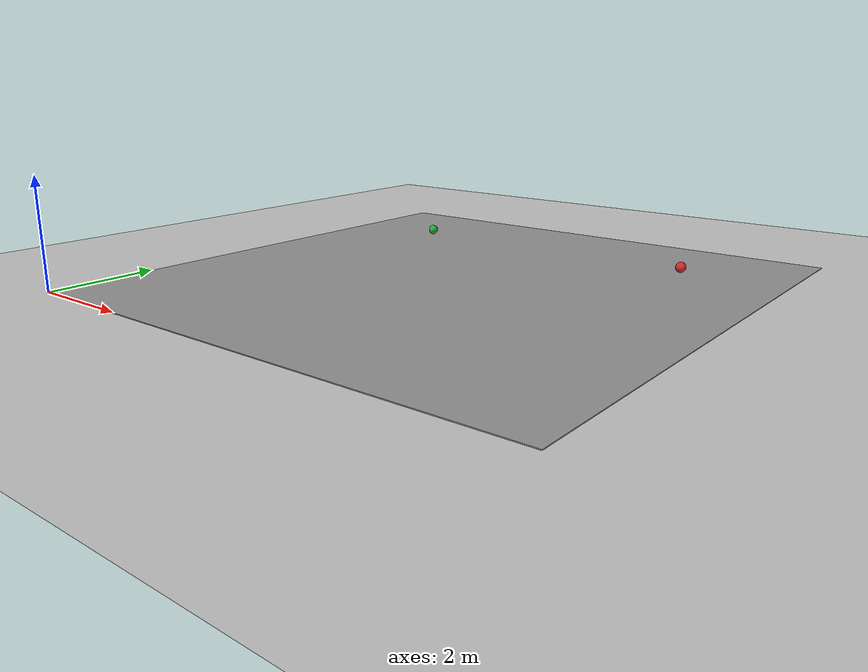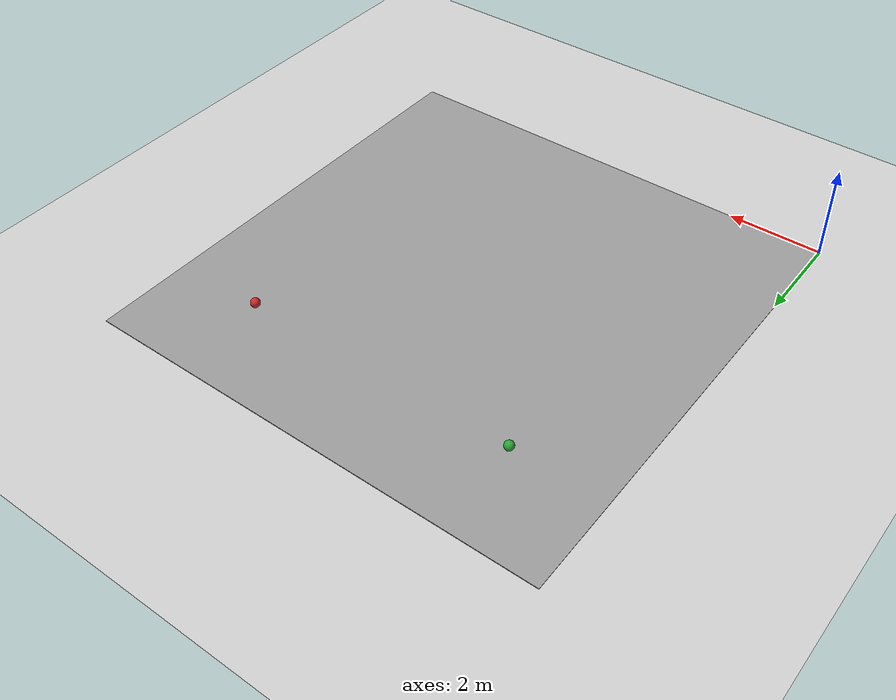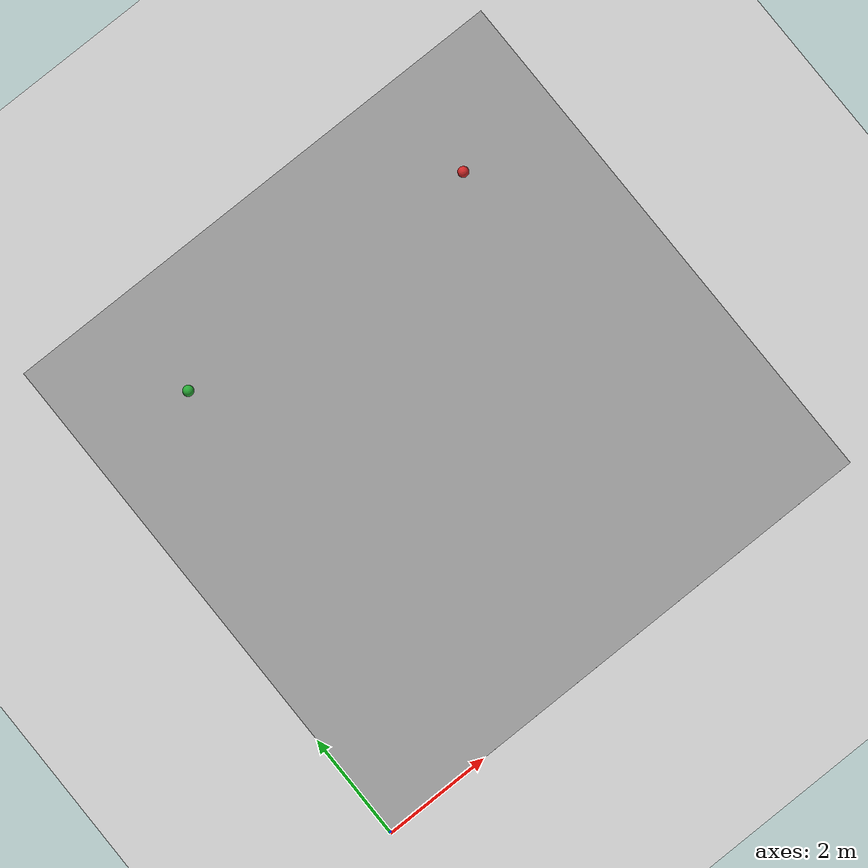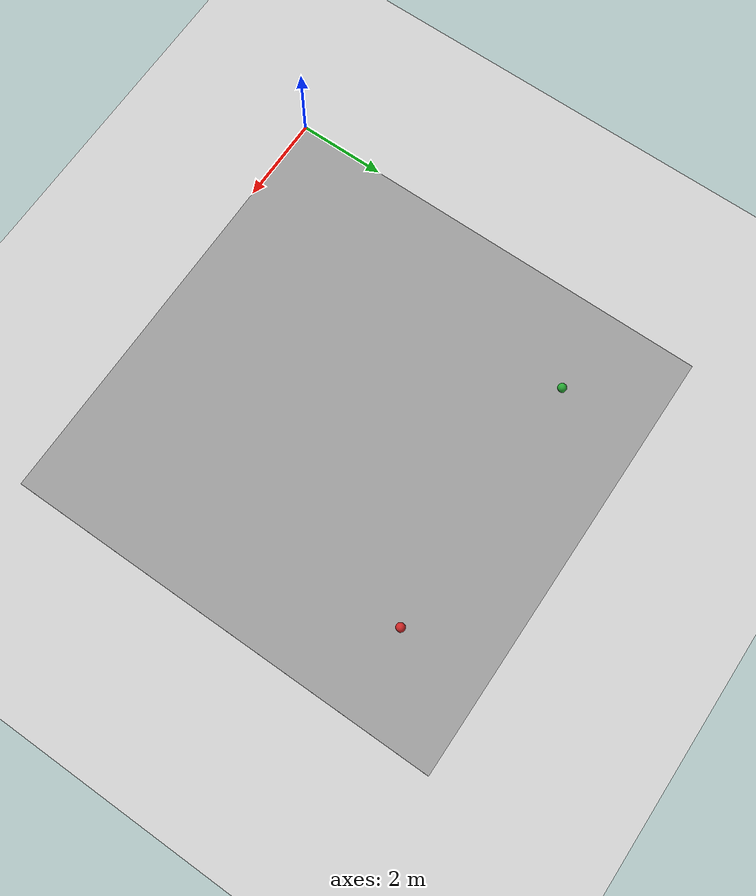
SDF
<?xml version="1.0" ?>
<sdf version="1.6">
  <world name="default">
    <include>
      <uri>model://ground_plane</uri>
    </include>
    <include>
      <uri>model://sun</uri>
    </include>

    <!-- Arena Walls -->
    <model name="arena">
      <static>true</static>
      <link name="link">
        <collision name="collision">
          <geometry>
            <box><size>10.0 10.0 0.5</size></box>
          </geometry>
        </collision>
        <visual name="visual">
          <geometry>
            <box><size>10.0 10.0 0.5</size></box>
          </geometry>
          <material>
            <script>
              <uri>file://media/materials/scripts/gazebo.material</uri>
              <name>Gazebo/Grey</name>
            </script>
          </material>
        </visual>
      </link>
      <pose>5.0 5.0 -0.25 0 0 0</pose>
    </model>

    <!-- Target Payloads -->
    <model name="target_1">
      <pose>8.0 8.0 0.1 0 0 0</pose>
      <link name="link">
        <collision name="collision">
          <geometry><sphere><radius>0.1</radius></sphere></geometry>
        </collision>
        <visual name="visual">
          <geometry><sphere><radius>0.1</radius></sphere></geometry>
          <material><script><name>Gazebo/Red</name></script></material>
        </visual>
      </link>
    </model>

    <model name="target_2">
      <pose>2.0 8.0 0.1 0 0 0</pose>
      <link name="link">
        <collision name="collision">
          <geometry><sphere><radius>0.1</radius></sphere></geometry>
        </collision>
        <visual name="visual">
          <geometry><sphere><radius>0.1</radius></sphere></geometry>
          <material><script><name>Gazebo/Green</name></script></material>
        </visual>
      </link>
    </model>

    <physics type="ode">
      <max_step_size>0.001</max_step_size>
      <real_time_factor>1.0</real_time_factor>
      <real_time_update_rate>1000</real_time_update_rate>
    </physics>
  </world>
</sdf>
